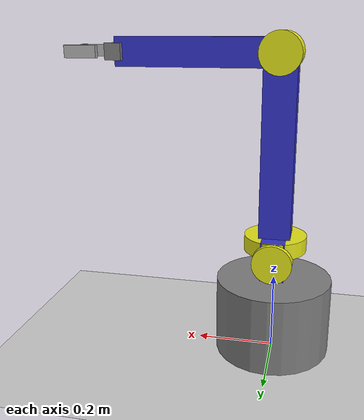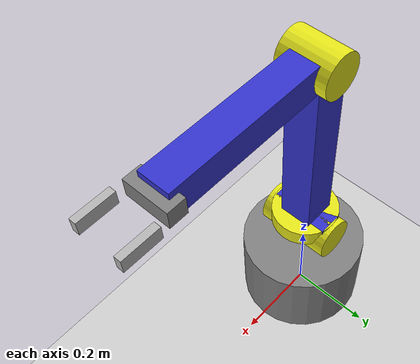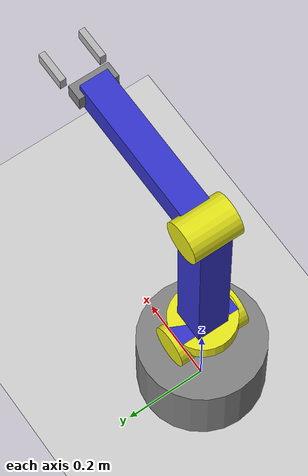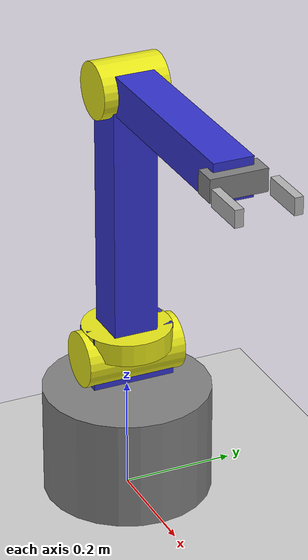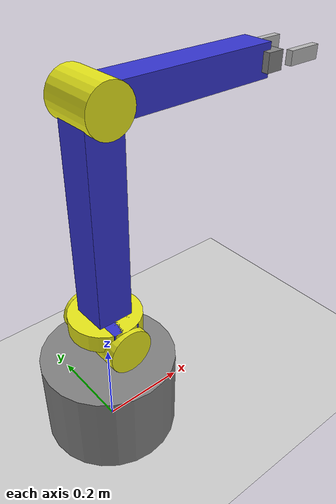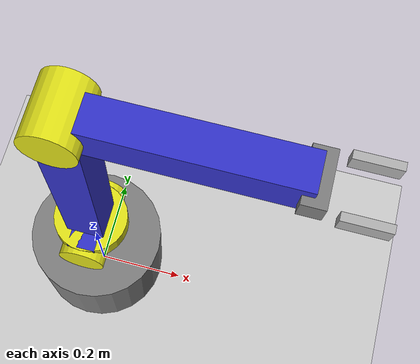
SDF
<?xml version="1.0" ?>
<sdf version="1.8">
  <world name="robotic_arm_world">
    <physics name="1ms" type="ignored">
      <max_step_size>0.001</max_step_size>
      <real_time_factor>1.0</real_time_factor>
    </physics>
    <plugin filename="libignition-gazebo-physics-system.so" name="ignition::gazebo::systems::Physics"/>
    <plugin filename="libignition-gazebo-user-commands-system.so" name="ignition::gazebo::systems::UserCommands"/>
    <plugin filename="libignition-gazebo-scene-broadcaster-system.so" name="ignition::gazebo::systems::SceneBroadcaster"/>

    <light type="directional" name="sun">
      <cast_shadows>true</cast_shadows>
      <pose>0 0 10 0 0 0</pose>
      <diffuse>0.8 0.8 0.8 1</diffuse>
      <specular>0.2 0.2 0.2 1</specular>
      <attenuation><range>1000</range><constant>0.9</constant><linear>0.01</linear><quadratic>0.001</quadratic></attenuation>
    </light>

    <model name="ground_plane">
      <static>true</static>
      <link name="link">
        <collision name="collision"><geometry><plane><normal>0 0 1</normal></plane></geometry></collision>
        <visual name="visual"><geometry><plane><normal>0 0 1</normal><size>100 100</size></plane></geometry><material><ambient>0.8 0.8 0.8 1</ambient><diffuse>0.8 0.8 0.8 1</diffuse><specular>0.8 0.8 0.8 1</specular></material></visual>
      </link>
    </model>

    <model name="robotic_arm" canonical_link="base">
      <pose>0 0 0 0 0 0</pose> <!-- Place base directly on ground plane -->

      <!-- Base Link -->
      <link name="base">
        <pose>0 0 0.1 0 0 0</pose> <!-- Center of base cylinder at Z=0.1 -->
        <inertial><mass>2.0</mass><inertia><ixx>0.02</ixx><iyy>0.02</iyy><izz>0.04</izz></inertia></inertial>
        <visual name="base_visual">
          <geometry><cylinder><radius>0.15</radius><length>0.2</length></cylinder></geometry>
          <material><ambient>0.4 0.4 0.4 1</ambient><diffuse>0.5 0.5 0.5 1</diffuse><specular>0.1 0.1 0.1 1</specular></material> <!-- Grey -->
        </visual>
        <collision name="base_collision">
          <geometry><cylinder><radius>0.15</radius><length>0.2</length></cylinder></geometry>
        </collision>
        <!-- Visual for Yaw Joint Housing -->
         <visual name="yaw_joint_visual">
           <pose>0 0 0.2 0 0 0</pose> <!-- Top of base cylinder -->
           <geometry><cylinder><radius>0.08</radius><length>0.04</length></cylinder></geometry>
           <material><ambient>0.8 0.8 0.1 1</ambient><diffuse>0.9 0.9 0.1 1</diffuse><specular>0.5 0.5 0.1 1</specular></material> <!-- Yellow -->
         </visual>
      </link>

      <!-- Shoulder Yaw Link (Connects Base Yaw to Shoulder Pitch) -->
      <link name="shoulder_yaw_link">
        <!-- Positioned by Joint 1 -->
        <pose>0 0 0.22 0 0 0</pose> <!-- Centered on yaw joint visual -->
        <inertial><mass>0.5</mass><inertia><ixx>0.005</ixx><iyy>0.005</iyy><izz>0.005</izz></inertia></inertial>
        <!-- This link is mostly just for the shoulder pitch joint mount -->
        <visual name="shoulder_pitch_mount">
           <!-- A block where the upper arm attaches -->
           <pose>0.0 0 0.05 0 0 0 </pose> <!-- Offset slightly vertically -->
           <geometry><box><size>0.06 0.15 0.1</size></box></geometry>
           <material><ambient>0.1 0.1 0.7 1</ambient><diffuse>0.2 0.2 0.8 1</diffuse><specular>0.1 0.1 0.5 1</specular></material> <!-- Blue -->
        </visual>
         <collision name="shoulder_pitch_mount_collision">
           <pose>0.0 0 0.05 0 0 0</pose>
           <geometry><box><size>0.06 0.15 0.1</size></box></geometry>
         </collision>
          <!-- Visual for Pitch Joint Cylinder -->
         <visual name="shoulder_pitch_joint_visual">
           <pose>0 0 0.05 1.5708 0 0</pose> <!-- Centered in the mount, rotated along Y -->
           <geometry><cylinder><radius>0.05</radius><length>0.18</length></cylinder></geometry>
           <material><ambient>0.8 0.8 0.1 1</ambient><diffuse>0.9 0.9 0.1 1</diffuse><specular>0.5 0.5 0.1 1</specular></material> <!-- Yellow -->
         </visual>
      </link>

      <!-- Upper Arm Link -->
      <link name="upper_arm">
        <!-- Positioned by Joint 2 -->
        <pose>0 0 0.27 0 0 0</pose> <!-- Approximate initial position -->
        <inertial><mass>1.0</mass><inertia><ixx>0.01</ixx><iyy>0.01</iyy><izz>0.01</izz></inertia></inertial>
        <visual name="upper_arm_visual">
          <!-- Center the visual along its length -->
          <pose>0 0 0.25 0 0 0</pose> <!-- Offset from joint axis along Z -->
          <geometry><box><size>0.08 0.08 0.5</size></box></geometry>
          <material><ambient>0.1 0.1 0.7 1</ambient><diffuse>0.2 0.2 0.8 1</diffuse><specular>0.1 0.1 0.5 1</specular></material> <!-- Blue -->
        </visual>
        <collision name="upper_arm_collision">
           <pose>0 0 0.25 0 0 0</pose>
           <geometry><box><size>0.08 0.08 0.5</size></box></geometry>
        </collision>
        <!-- Visual for Elbow Joint Housing -->
        <visual name="elbow_joint_visual">
           <pose>0 0 0.5 1.5708 0 0</pose> <!-- At the end of upper arm visual, rotated -->
           <geometry><cylinder><radius>0.05</radius><length>0.12</length></cylinder></geometry>
           <material><ambient>0.8 0.8 0.1 1</ambient><diffuse>0.9 0.9 0.1 1</diffuse><specular>0.5 0.5 0.1 1</specular></material> <!-- Yellow -->
         </visual>
      </link>

      <!-- Forearm Link -->
      <link name="forearm">
        <!-- Positioned by Joint 3 -->
        <pose>0 0 0.77 0 0 0</pose> <!-- Approximate initial position -->
         <inertial><mass>0.8</mass><inertia><ixx>0.008</ixx><iyy>0.008</iyy><izz>0.008</izz></inertia></inertial>
         <visual name="forearm_visual">
           <!-- Extend along X from the elbow joint -->
           <pose>0.2 0 0 0 0 0</pose>
           <geometry><box><size>0.4 0.07 0.07</size></box></geometry>
           <material><ambient>0.1 0.1 0.7 1</ambient><diffuse>0.2 0.2 0.8 1</diffuse><specular>0.1 0.1 0.5 1</specular></material> <!-- Blue -->
         </visual>
          <collision name="forearm_collision">
            <pose>0.2 0 0 0 0 0</pose>
            <geometry><box><size>0.4 0.07 0.07</size></box></geometry>
          </collision>
      </link>

       <!-- Gripper Base Link (attached to forearm end) -->
      <link name="gripper_base">
         <pose>0.4 0 0.77 0 0 0</pose> <!-- Approx Initial Position, determined by joint -->
         <inertial><mass>0.1</mass><inertia><ixx>0.001</ixx><iyy>0.001</iyy><izz>0.001</izz></inertia></inertial>
         <visual name="gripper_base_visual">
           <geometry><box><size>0.04 0.1 0.04</size></box></geometry>
           <material><ambient>0.4 0.4 0.4 1</ambient><diffuse>0.5 0.5 0.5 1</diffuse><specular>0.1 0.1 0.1 1</specular></material> <!-- Grey -->
         </visual>
         <collision name="gripper_base_collision">
           <geometry><box><size>0.04 0.1 0.04</size></box></geometry>
         </collision>
      </link>

      <!-- Left Finger Link -->
      <link name="left_finger">
        <pose>0.44 0.05 0.77 0 0 0</pose> <!-- Approx Initial Position -->
         <inertial><mass>0.05</mass><inertia><ixx>0.0001</ixx><iyy>0.0001</iyy><izz>0.0001</izz></inertia></inertial>
        <visual name="left_finger_visual">
          <pose>0.04 0 0 0 0 0</pose>
          <geometry><box><size>0.08 0.015 0.03</size></box></geometry>
           <material><ambient>0.6 0.6 0.6 1</ambient><diffuse>0.7 0.7 0.7 1</diffuse><specular>0.1 0.1 0.1 1</specular></material> <!-- Lighter Grey -->
        </visual>
        <collision name="left_finger_collision">
          <pose>0.04 0 0 0 0 0</pose>
           <geometry><box><size>0.08 0.015 0.03</size></box></geometry>
        </collision>
      </link>

      <!-- Right Finger Link -->
       <link name="right_finger">
         <pose>0.44 -0.05 0.77 0 0 0</pose> <!-- Approx Initial Position -->
         <inertial><mass>0.05</mass><inertia><ixx>0.0001</ixx><iyy>0.0001</iyy><izz>0.0001</izz></inertia></inertial>
         <visual name="right_finger_visual">
           <pose>0.04 0 0 0 0 0</pose>
           <geometry><box><size>0.08 0.015 0.03</size></box></geometry>
           <material><ambient>0.6 0.6 0.6 1</ambient><diffuse>0.7 0.7 0.7 1</diffuse><specular>0.1 0.1 0.1 1</specular></material> <!-- Lighter Grey -->
         </visual>
         <collision name="right_finger_collision">
           <pose>0.04 0 0 0 0 0</pose>
           <geometry><box><size>0.08 0.015 0.03</size></box></geometry>
         </collision>
       </link>

      <!-- === JOINTS === -->

      <!-- Joint 1: Base Yaw -->
      <joint name="base_to_shoulder_yaw" type="revolute">
        <parent>base</parent>
        <child>shoulder_yaw_link</child>
        <pose>0 0 0.2 0 0 0</pose> <!-- Joint axis Z at top of base -->
        <axis>
          <xyz>0 0 1</xyz> <!-- Rotation around Z -->
          <limit><lower>-2.9</lower><upper>2.9</upper></limit>
          <dynamics><damping>0.2</damping><friction>0.1</friction></dynamics>
        </axis>
      </joint>

      <!-- Joint 2: Shoulder Pitch -->
      <joint name="shoulder_pitch" type="revolute">
        <parent>shoulder_yaw_link</parent>
        <child>upper_arm</child>
        <!-- Place joint axis relative to PARENT (shoulder_yaw_link) -->
        <pose>0 0 0.05 0 0 0</pose> <!-- Aligned with shoulder pitch visual -->
        <axis>
          <xyz>0 1 0</xyz> <!-- Rotation around Y -->
          <limit><lower>-1.57</lower><upper>2.0</upper></limit>
          <dynamics><damping>0.2</damping><friction>0.1</friction></dynamics>
          <initial_position>0.5</initial_position> <!-- Start slightly raised -->
        </axis>
      </joint>

      <!-- Joint 3: Elbow Pitch -->
      <joint name="elbow_pitch" type="revolute">
        <parent>upper_arm</parent>
        <child>forearm</child>
        <!-- Place joint axis relative to PARENT (upper_arm) -->
        <pose>0 0 0.5 0 0 0</pose> <!-- At the end of upper_arm visual -->
        <axis>
          <xyz>0 1 0</xyz> <!-- Rotation around Y -->
          <limit><lower>-2.5</lower><upper>2.5</upper></limit>
          <dynamics><damping>0.2</damping><friction>0.1</friction></dynamics>
           <initial_position>1.0</initial_position> <!-- Start bent -->
        </axis>
      </joint>

      <!-- Joint 4: Fixed Wrist -->
       <joint name="forearm_to_gripper_base" type="fixed">
        <parent>forearm</parent>
        <child>gripper_base</child>
        <pose>0.4 0 0 0 0 0</pose> <!-- At end of forearm visual -->
      </joint>

      <!-- Joint 5: Left Finger Prismatic -->
      <joint name="gripper_base_to_left_finger" type="prismatic">
        <parent>gripper_base</parent>
        <child>left_finger</child>
        <pose>0 0.05 0 0 0 0</pose> <!-- Offset on +Y relative to gripper base -->
        <axis>
          <xyz>0 1 0</xyz> <!-- Slide along Y -->
          <limit><lower>0</lower><upper>0.03</upper></limit>
          <dynamics><damping>1.0</damping><friction>1.0</friction></dynamics>
        </axis>
      </joint>

       <!-- Joint 6: Right Finger Prismatic -->
       <joint name="gripper_base_to_right_finger" type="prismatic">
         <parent>gripper_base</parent>
         <child>right_finger</child>
         <pose>0 -0.05 0 0 0 0</pose> <!-- Offset on -Y relative to gripper base -->
         <axis>
           <xyz>0 -1 0</xyz> <!-- Slide along -Y -->
           <limit><lower>0</lower><upper>0.03</upper></limit>
           <dynamics><damping>1.0</damping><friction>1.0</friction></dynamics>
         </axis>
       </joint>

    </model>
  </world>
</sdf>
